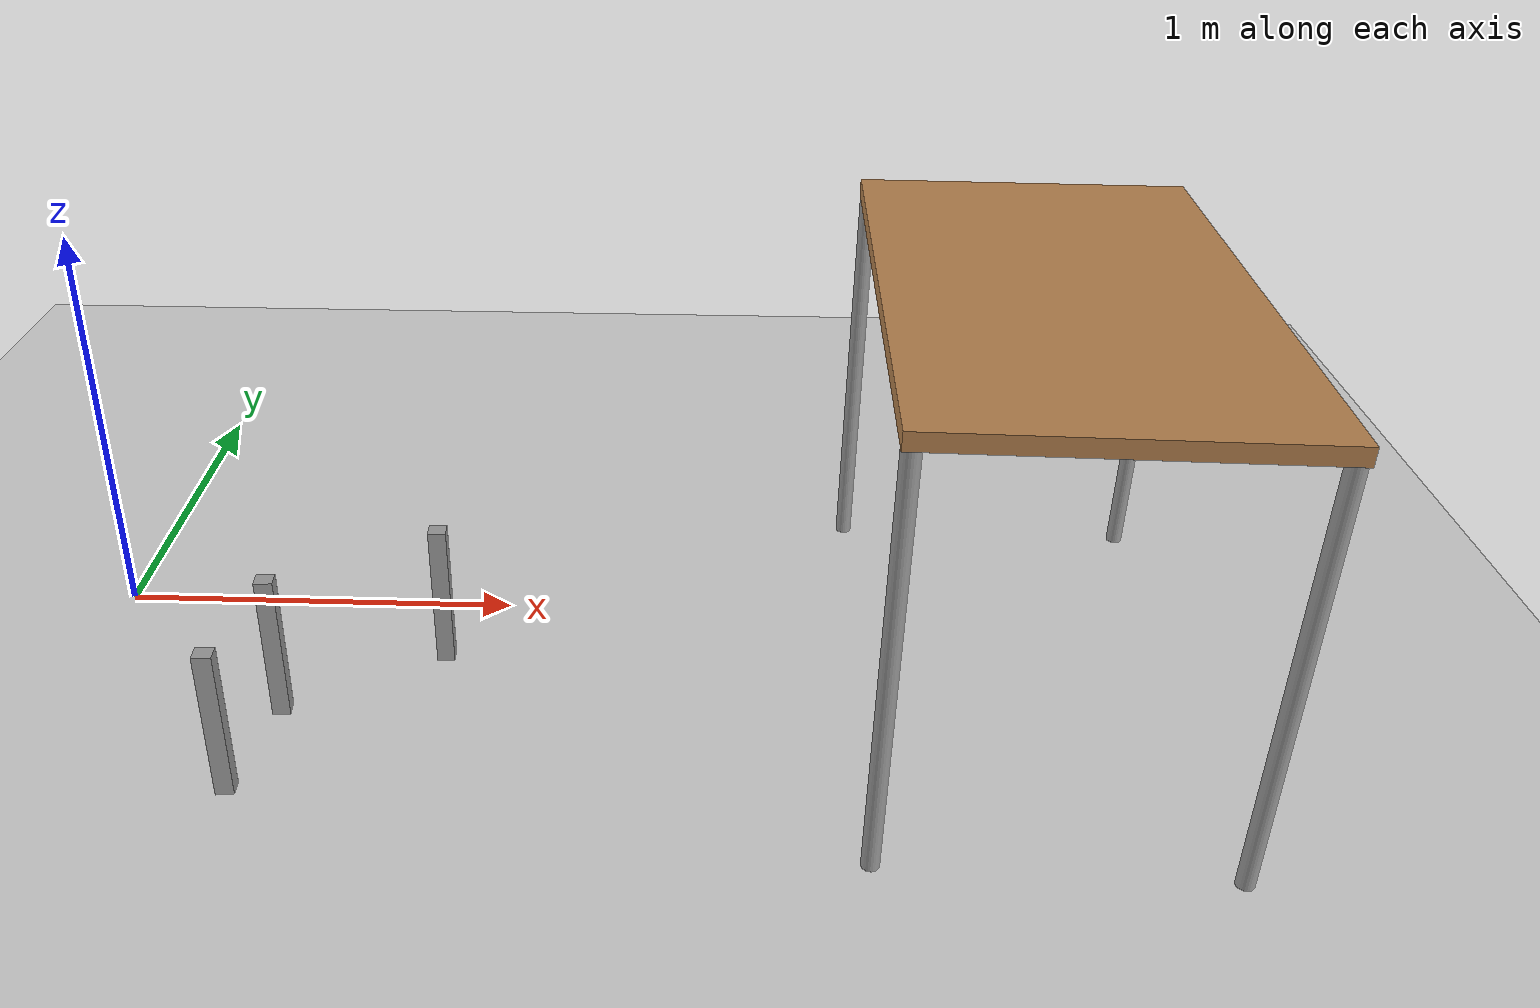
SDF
<sdf version="1.6">
 <world name="default">
  <light name="sun" type="directional">
   <pose>0 0 10 0 -0 0</pose>
   <diffuse>0.8 0.8 0.8 1</diffuse>
   <specular>0.1 0.1 0.1 1</specular>
   <attenuation>
    <range>1000</range>
    <constant>0.9</constant>
    <linear>0.01</linear>
    <quadratic>0.001</quadratic>
   </attenuation>
   <direction>-0.5 0.5 -1</direction>
  </light>
  <model name="ground_plane">
   <static>1</static>
   <link name="link">
    <collision name="collision">
     <geometry><plane><normal>0 0 1</normal><size>100 100</size></plane></geometry>
     <surface><friction><ode><mu>100</mu><mu2>50</mu2></ode></friction></surface>
    </collision>
    <visual name="visual">
     <cast_shadows>0</cast_shadows>
     <geometry><plane><normal>0 0 1</normal><size>100 100</size></plane></geometry>
     <material>
      <script><uri>file://media/materials/scripts/gazebo.material</uri><name>Gazebo/Grey</name></script>
     </material>
    </visual>
   </link>
  </model>
  <gravity>0 0 -9.8</gravity>
  <magnetic_field>6e-06 2.3e-05 -4.2e-05</magnetic_field>
  <atmosphere type="adiabatic"/>
  <physics name="default_physics" default="0" type="ode">
   <max_step_size>0.001</max_step_size>
   <real_time_factor>1</real_time_factor>
   <real_time_update_rate>1000</real_time_update_rate>
  </physics>
  <scene><ambient>0.4 0.4 0.4 1</ambient><background>0.7 0.7 0.7 1</background><shadows>1</shadows></scene>
  <spherical_coordinates>
   <surface_model>EARTH_WGS84</surface_model>
   <latitude_deg>0</latitude_deg>
   <longitude_deg>0</longitude_deg>
   <elevation>0</elevation>
   <heading_deg>0</heading_deg>
  </spherical_coordinates>
  <model name="table_0_0_0_0_0">
   <link name="link">
    <pose>-1.11781 1.78287 0 0 -0 0</pose>
    <inertial>
     <inertia><ixx>100</ixx><ixy>0</ixy><ixz>0</ixz><iyy>100</iyy><iyz>0</iyz><izz>100</izz></inertia>
     <mass>1000</mass>
     <pose>0 0 0.5 0 -0 0</pose>
    </inertial>
    <visual name="front_left_leg">
     <pose>0.68 0.38 0.5 0 -0 0</pose>
     <geometry><cylinder><radius>0.02</radius><length>1</length></cylinder></geometry>
     <material>
      <script><uri>file://media/materials/scripts/gazebo.material</uri><name>Gazebo/Grey</name></script>
      <ambient>0.3 0.3 0.3 1</ambient>
      <diffuse>0.7 0.7 0.7 1</diffuse>
      <specular>0.01 0.01 0.01 1</specular>
      <emissive>0 0 0 1</emissive>
      <shader type="vertex"><normal_map>__default__</normal_map></shader>
     </material>
    </visual>
    <visual name="visual1">
     <pose>0 0 1 0 -0 0</pose>
     <geometry><box><size>1.4 0.8 0.04</size></box></geometry>
     <material>
      <script><uri>file://media/materials/scripts/gazebo.material</uri><name>Gazebo/Wood</name></script>
      <ambient>1 1 1 1</ambient>
      <diffuse>1 1 1 1</diffuse>
      <specular>0.2 0.2 0.2 1</specular>
      <emissive>0 0 0 1</emissive>
      <shader type="vertex"><normal_map>__default__</normal_map></shader>
     </material>
    </visual>
    <visual name="front_right_leg">
     <pose>0.68 -0.38 0.5 0 -0 0</pose>
     <geometry><cylinder><radius>0.02</radius><length>1</length></cylinder></geometry>
     <material>
      <script><uri>file://media/materials/scripts/gazebo.material</uri><name>Gazebo/Grey</name></script>
      <ambient>0.3 0.3 0.3 1</ambient>
      <diffuse>0.7 0.7 0.7 1</diffuse>
      <specular>0.01 0.01 0.01 1</specular>
      <emissive>0 0 0 1</emissive>
      <shader type="vertex"><normal_map>__default__</normal_map></shader>
     </material>
    </visual>
    <visual name="back_right_leg">
     <pose>-0.68 -0.38 0.5 0 -0 0</pose>
     <geometry><cylinder><radius>0.02</radius><length>1</length></cylinder></geometry>
     <material>
      <script><uri>file://media/materials/scripts/gazebo.material</uri><name>Gazebo/Grey</name></script>
      <ambient>0.3 0.3 0.3 1</ambient>
      <diffuse>0.7 0.7 0.7 1</diffuse>
      <specular>0.01 0.01 0.01 1</specular>
      <emissive>0 0 0 1</emissive>
      <shader type="vertex"><normal_map>__default__</normal_map></shader>
     </material>
    </visual>
    <visual name="back_left_leg">
     <pose>-0.68 0.38 0.5 0 -0 0</pose>
     <geometry><cylinder><radius>0.02</radius><length>1</length></cylinder></geometry>
     <material>
      <script><uri>file://media/materials/scripts/gazebo.material</uri><name>Gazebo/Grey</name></script>
      <ambient>0.3 0.3 0.3 1</ambient>
      <diffuse>0.7 0.7 0.7 1</diffuse>
      <specular>0.01 0.01 0.01 1</specular>
      <emissive>0 0 0 1</emissive>
      <shader type="vertex"><normal_map>__default__</normal_map></shader>
     </material>
    </visual>
    <collision name="back_right_leg">
     <pose>-0.68 -0.38 0.5 0 -0 0</pose>
     <geometry><cylinder><radius>0.02</radius><length>1</length></cylinder></geometry>
     <surface>
      <friction>
       <ode><mu>1</mu><mu2>1</mu2><fdir1>0 0 0</fdir1><slip1>0</slip1><slip2>0</slip2></ode>
       <torsional>
        <coefficient>1</coefficient>
        <patch_radius>0</patch_radius>
        <surface_radius>0</surface_radius>
        <use_patch_radius>1</use_patch_radius>
        <ode><slip>0</slip></ode>
       </torsional>
      </friction>
      <bounce><restitution_coefficient>0</restitution_coefficient><threshold>1e+06</threshold></bounce>
      <contact>
       <collide_without_contact>0</collide_without_contact>
       <collide_without_contact_bitmask>1</collide_without_contact_bitmask>
       <collide_bitmask>1</collide_bitmask>
       <ode>
        <soft_cfm>0</soft_cfm>
        <soft_erp>0.2</soft_erp>
        <kp>1e+13</kp>
        <kd>1</kd>
        <max_vel>0.01</max_vel>
        <min_depth>0</min_depth>
       </ode>
       <bullet>
        <split_impulse>1</split_impulse>
        <split_impulse_penetration_threshold>-0.01</split_impulse_penetration_threshold>
        <soft_cfm>0</soft_cfm>
        <soft_erp>0.2</soft_erp>
        <kp>1e+13</kp>
        <kd>1</kd>
       </bullet>
      </contact>
     </surface>
    </collision>
    <collision name="surface">
     <pose>0 0 1 0 -0 0</pose>
     <geometry><box><size>1.5 0.8 0.03</size></box></geometry>
     <surface>
      <friction>
       <ode><mu>0.6</mu><mu2>0.6</mu2><fdir1>0 0 0</fdir1><slip1>0</slip1><slip2>0</slip2></ode>
       <torsional>
        <coefficient>1</coefficient>
        <patch_radius>0</patch_radius>
        <surface_radius>0</surface_radius>
        <use_patch_radius>1</use_patch_radius>
        <ode><slip>0</slip></ode>
       </torsional>
      </friction>
      <bounce><restitution_coefficient>0</restitution_coefficient><threshold>1e+06</threshold></bounce>
      <contact>
       <collide_without_contact>0</collide_without_contact>
       <collide_without_contact_bitmask>1</collide_without_contact_bitmask>
       <collide_bitmask>1</collide_bitmask>
       <ode>
        <soft_cfm>0</soft_cfm>
        <soft_erp>0.2</soft_erp>
        <kp>1e+13</kp>
        <kd>1</kd>
        <max_vel>0.01</max_vel>
        <min_depth>0</min_depth>
       </ode>
       <bullet>
        <split_impulse>1</split_impulse>
        <split_impulse_penetration_threshold>-0.01</split_impulse_penetration_threshold>
        <soft_cfm>0</soft_cfm>
        <soft_erp>0.2</soft_erp>
        <kp>1e+13</kp>
        <kd>1</kd>
       </bullet>
      </contact>
     </surface>
    </collision>
    <collision name="front_right_leg">
     <pose>0.68 -0.38 0.5 0 -0 0</pose>
     <geometry><cylinder><radius>0.02</radius><length>1</length></cylinder></geometry>
     <surface>
      <friction>
       <ode><mu>1</mu><mu2>1</mu2><fdir1>0 0 0</fdir1><slip1>0</slip1><slip2>0</slip2></ode>
       <torsional>
        <coefficient>1</coefficient>
        <patch_radius>0</patch_radius>
        <surface_radius>0</surface_radius>
        <use_patch_radius>1</use_patch_radius>
        <ode><slip>0</slip></ode>
       </torsional>
      </friction>
      <bounce><restitution_coefficient>0</restitution_coefficient><threshold>1e+06</threshold></bounce>
      <contact>
       <collide_without_contact>0</collide_without_contact>
       <collide_without_contact_bitmask>1</collide_without_contact_bitmask>
       <collide_bitmask>1</collide_bitmask>
       <ode>
        <soft_cfm>0</soft_cfm>
        <soft_erp>0.2</soft_erp>
        <kp>1e+13</kp>
        <kd>1</kd>
        <max_vel>0.01</max_vel>
        <min_depth>0</min_depth>
       </ode>
       <bullet>
        <split_impulse>1</split_impulse>
        <split_impulse_penetration_threshold>-0.01</split_impulse_penetration_threshold>
        <soft_cfm>0</soft_cfm>
        <soft_erp>0.2</soft_erp>
        <kp>1e+13</kp>
        <kd>1</kd>
       </bullet>
      </contact>
     </surface>
    </collision>
    <collision name="back_left_leg">
     <pose>-0.68 0.38 0.5 0 -0 0</pose>
     <geometry><cylinder><radius>0.02</radius><length>1</length></cylinder></geometry>
     <surface>
      <friction>
       <ode><mu>1</mu><mu2>1</mu2><fdir1>0 0 0</fdir1><slip1>0</slip1><slip2>0</slip2></ode>
       <torsional>
        <coefficient>1</coefficient>
        <patch_radius>0</patch_radius>
        <surface_radius>0</surface_radius>
        <use_patch_radius>1</use_patch_radius>
        <ode><slip>0</slip></ode>
       </torsional>
      </friction>
      <bounce><restitution_coefficient>0</restitution_coefficient><threshold>1e+06</threshold></bounce>
      <contact>
       <collide_without_contact>0</collide_without_contact>
       <collide_without_contact_bitmask>1</collide_without_contact_bitmask>
       <collide_bitmask>1</collide_bitmask>
       <ode>
        <soft_cfm>0</soft_cfm>
        <soft_erp>0.2</soft_erp>
        <kp>1e+13</kp>
        <kd>1</kd>
        <max_vel>0.01</max_vel>
        <min_depth>0</min_depth>
       </ode>
       <bullet>
        <split_impulse>1</split_impulse>
        <split_impulse_penetration_threshold>-0.01</split_impulse_penetration_threshold>
        <soft_cfm>0</soft_cfm>
        <soft_erp>0.2</soft_erp>
        <kp>1e+13</kp>
        <kd>1</kd>
       </bullet>
      </contact>
     </surface>
    </collision>
    <collision name="front_left_leg">
     <pose>0.68 0.38 0.5 0 -0 0</pose>
     <geometry><cylinder><radius>0.02</radius><length>1</length></cylinder></geometry>
     <surface>
      <friction>
       <ode><mu>1</mu><mu2>1</mu2><fdir1>0 0 0</fdir1><slip1>0</slip1><slip2>0</slip2></ode>
       <torsional>
        <coefficient>1</coefficient>
        <patch_radius>0</patch_radius>
        <surface_radius>0</surface_radius>
        <use_patch_radius>1</use_patch_radius>
        <ode><slip>0</slip></ode>
       </torsional>
      </friction>
      <bounce><restitution_coefficient>0</restitution_coefficient><threshold>1e+06</threshold></bounce>
      <contact>
       <collide_without_contact>0</collide_without_contact>
       <collide_without_contact_bitmask>1</collide_without_contact_bitmask>
       <collide_bitmask>1</collide_bitmask>
       <ode>
        <soft_cfm>0</soft_cfm>
        <soft_erp>0.2</soft_erp>
        <kp>1e+13</kp>
        <kd>1</kd>
        <max_vel>0.01</max_vel>
        <min_depth>0</min_depth>
       </ode>
       <bullet>
        <split_impulse>1</split_impulse>
        <split_impulse_penetration_threshold>-0.01</split_impulse_penetration_threshold>
        <soft_cfm>0</soft_cfm>
        <soft_erp>0.2</soft_erp>
        <kp>1e+13</kp>
        <kd>1</kd>
       </bullet>
      </contact>
     </surface>
    </collision>
   </link>
   <static>0</static>
   <pose>0.441379 -1.31967 -6e-06 3e-06 -0 -1.60291</pose>
  </model>
  <model name="unit_box_0_clone_clone_0_0_0_0_0_clone_0_0">
   <link name="link">
    <inertial>
     <mass>1</mass>
     <inertia><ixx>0.01</ixx><ixy>0</ixy><ixz>0</ixz><iyy>0.01</iyy><iyz>0</iyz><izz>0.008</izz></inertia>
    </inertial>
    <visual name="visual">
     <geometry><box><size>0.042601 0.041271 0.367408</size></box></geometry>
     <material>
      <script><name>Gazebo/Grey</name><uri>file://media/materials/scripts/gazebo.material</uri></script>
      <ambient>0.3 0.3 0.3 1</ambient>
      <diffuse>0.7 0.7 0.7 1</diffuse>
      <specular>0.01 0.01 0.01 1</specular>
      <emissive>0 0 0 1</emissive>
      <shader type="vertex"><normal_map>__default__</normal_map></shader>
     </material>
    </visual>
    <collision name="collision">
     <geometry><box><size>0.042601 0.041271 0.367408</size></box></geometry>
     <surface>
      <friction>
       <ode><mu>10000</mu><mu2>10000</mu2><fdir1>0 0 0</fdir1><slip1>0</slip1><slip2>0</slip2></ode>
       <torsional>
        <coefficient>1</coefficient>
        <patch_radius>0</patch_radius>
        <surface_radius>0</surface_radius>
        <use_patch_radius>1</use_patch_radius>
        <ode><slip>0</slip></ode>
       </torsional>
      </friction>
      <bounce><restitution_coefficient>0</restitution_coefficient><threshold>1e+06</threshold></bounce>
      <contact>
       <collide_without_contact>0</collide_without_contact>
       <collide_without_contact_bitmask>1</collide_without_contact_bitmask>
       <collide_bitmask>1</collide_bitmask>
       <ode>
        <soft_cfm>0</soft_cfm>
        <soft_erp>0.2</soft_erp>
        <kp>1e+13</kp>
        <kd>1</kd>
        <max_vel>0.01</max_vel>
        <min_depth>0</min_depth>
       </ode>
       <bullet>
        <split_impulse>1</split_impulse>
        <split_impulse_penetration_threshold>-0.01</split_impulse_penetration_threshold>
        <soft_cfm>0</soft_cfm>
        <soft_erp>0.2</soft_erp>
        <kp>1e+13</kp>
        <kd>1</kd>
       </bullet>
      </contact>
     </surface>
    </collision>
   </link>
   <static>0</static>
   <pose>0.866879 -0.229623 0.183704 2e-06 1.4e-05 0.050804</pose>
  </model>
  <model name="unit_box_0_clone_clone_0_0_0_0_0_0">
   <link name="link">
    <inertial>
     <mass>1</mass>
     <inertia><ixx>0.01</ixx><ixy>0</ixy><ixz>0</ixz><iyy>0.01</iyy><iyz>0</iyz><izz>0.008</izz></inertia>
    </inertial>
    <visual name="visual">
     <geometry><box><size>0.042601 0.041271 0.367408</size></box></geometry>
     <material>
      <script><name>Gazebo/Grey</name><uri>file://media/materials/scripts/gazebo.material</uri></script>
      <ambient>0.3 0.3 0.3 1</ambient>
      <diffuse>0.7 0.7 0.7 1</diffuse>
      <specular>0.01 0.01 0.01 1</specular>
      <emissive>0 0 0 1</emissive>
      <shader type="vertex"><normal_map>__default__</normal_map></shader>
     </material>
    </visual>
    <collision name="collision">
     <geometry><box><size>0.042601 0.041271 0.367408</size></box></geometry>
     <surface>
      <friction>
       <ode><mu>10000</mu><mu2>10000</mu2><fdir1>0 0 0</fdir1><slip1>0</slip1><slip2>0</slip2></ode>
       <torsional>
        <coefficient>1</coefficient>
        <patch_radius>0</patch_radius>
        <surface_radius>0</surface_radius>
        <use_patch_radius>1</use_patch_radius>
        <ode><slip>0</slip></ode>
       </torsional>
      </friction>
      <bounce><restitution_coefficient>0</restitution_coefficient><threshold>1e+06</threshold></bounce>
      <contact>
       <collide_without_contact>0</collide_without_contact>
       <collide_without_contact_bitmask>1</collide_without_contact_bitmask>
       <collide_bitmask>1</collide_bitmask>
       <ode>
        <soft_cfm>0</soft_cfm>
        <soft_erp>0.2</soft_erp>
        <kp>1e+13</kp>
        <kd>1</kd>
        <max_vel>0.01</max_vel>
        <min_depth>0</min_depth>
       </ode>
       <bullet>
        <split_impulse>1</split_impulse>
        <split_impulse_penetration_threshold>-0.01</split_impulse_penetration_threshold>
        <soft_cfm>0</soft_cfm>
        <soft_erp>0.2</soft_erp>
        <kp>1e+13</kp>
        <kd>1</kd>
       </bullet>
      </contact>
     </surface>
    </collision>
   </link>
   <static>0</static>
   <pose>0.510815 -0.459714 0.183704 2e-06 -8e-06 0.075259</pose>
  </model>
  <model name="unit_box_0_clone_clone_0_0_0_0_0_clone_1">
   <link name="link">
    <inertial>
     <mass>1</mass>
     <inertia><ixx>0.01</ixx><ixy>0</ixy><ixz>0</ixz><iyy>0.01</iyy><iyz>0</iyz><izz>0.008</izz></inertia>
    </inertial>
    <visual name="visual">
     <geometry><box><size>0.042601 0.041271 0.367408</size></box></geometry>
     <material>
      <script><name>Gazebo/Grey</name><uri>file://media/materials/scripts/gazebo.material</uri></script>
      <ambient>0.3 0.3 0.3 1</ambient>
      <diffuse>0.7 0.7 0.7 1</diffuse>
      <specular>0.01 0.01 0.01 1</specular>
      <emissive>0 0 0 1</emissive>
      <shader type="vertex"><normal_map>__default__</normal_map></shader>
     </material>
    </visual>
    <collision name="collision">
     <geometry><box><size>0.042601 0.041271 0.367408</size></box></geometry>
     <surface>
      <friction>
       <ode><mu>10000</mu><mu2>10000</mu2><fdir1>0 0 0</fdir1><slip1>0</slip1><slip2>0</slip2></ode>
       <torsional>
        <coefficient>1</coefficient>
        <patch_radius>0</patch_radius>
        <surface_radius>0</surface_radius>
        <use_patch_radius>1</use_patch_radius>
        <ode><slip>0</slip></ode>
       </torsional>
      </friction>
      <bounce><restitution_coefficient>0</restitution_coefficient><threshold>1e+06</threshold></bounce>
      <contact>
       <collide_without_contact>0</collide_without_contact>
       <collide_without_contact_bitmask>1</collide_without_contact_bitmask>
       <collide_bitmask>1</collide_bitmask>
       <ode>
        <soft_cfm>0</soft_cfm>
        <soft_erp>0.2</soft_erp>
        <kp>1e+13</kp>
        <kd>1</kd>
        <max_vel>0.01</max_vel>
        <min_depth>0</min_depth>
       </ode>
       <bullet>
        <split_impulse>1</split_impulse>
        <split_impulse_penetration_threshold>-0.01</split_impulse_penetration_threshold>
        <soft_cfm>0</soft_cfm>
        <soft_erp>0.2</soft_erp>
        <kp>1e+13</kp>
        <kd>1</kd>
       </bullet>
      </contact>
     </surface>
    </collision>
   </link>
   <static>0</static>
   <pose>0.457217 -0.746397 0.183704 -9e-06 2e-06 0.069304</pose>
  </model>
 </world>
</sdf>
